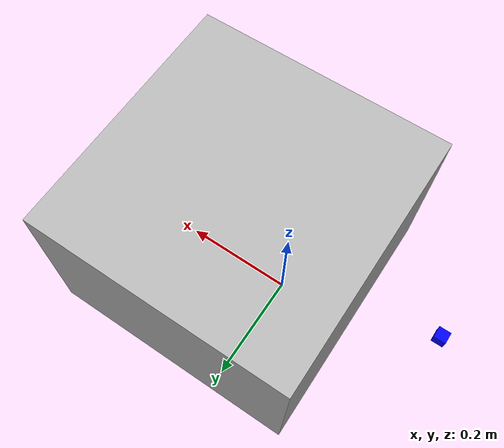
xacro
<?xml version="1.0"?>
<robot xmlns:xacro="http://www.ros.org/wiki/xacro" name="ylhb_robot">

  <!-- 1. 定义主要参考坐标系 (通常位于机器人底盘中心在地面的投影位置) -->
  <link name="base_footprint"/>

  <!-- 2. 小车主体框架：建立 base_link（实测长方体包络） -->
  <link name="base_link">
    <visual>
      <origin xyz="0.0885 0 0.07175" rpy="0 0 0"/>
      <geometry>
        <box size="0.465 0.470 0.3165"/>
      </geometry>
      <material name="gray">
        <color rgba="0.7 0.7 0.7 1"/>
      </material>
    </visual>
    <collision>
      <origin xyz="0.0885 0 0.07175" rpy="0 0 0"/>
      <geometry>
        <box size="0.465 0.470 0.3165"/>
      </geometry>
    </collision>
  </link>

  <!-- 将 base_link 与 base_footprint 链接，保持底盘坐标系在轮间中心。 -->
  <joint name="footprint_to_base_joint" type="fixed">
    <parent link="base_footprint"/>
    <child link="base_link"/>
    <origin xyz="0 0 0.0865" rpy="0 0 0"/>
  </joint>

  <!-- 3. 定义 IMU 的位置与物理属性 -->
  <link name="imu_link">
    <!-- 仅做在RVIZ中可视化时的示意（简单方块） -->
    <visual>
      <geometry>
        <box size="0.02 0.02 0.02"/>
      </geometry>
      <material name="blue">
        <color rgba="0 0 1 1"/>
      </material>
    </visual>
  </link>

  <!-- 4. 定义 激光雷达 的位置与物理属性 -->
  <link name="laser_link">
    <!-- RVIZ可视化的简单圆柱体示意 -->
    <visual>
      <geometry>
        <cylinder radius="0.035" length="0.03"/>
      </geometry>
      <material name="black">
        <color rgba="0.1 0.1 0.1 1"/>
      </material>
    </visual>
  </link>

  <!-- ================= 连接关节 (Joints) ================= -->

  <!-- Base 到 IMU 的静态固定连接 -->
  <joint name="base_to_imu_joint" type="fixed">
    <parent link="base_link"/>
    <child link="imu_link"/>
    <!-- 匹配 ROS 前左上标准坐标系 (X为前，Y为左，Z为上) -->
    <origin xyz="-0.280 0 0.107" rpy="0 0 0"/>
  </joint>

  <joint name="base_to_laser_joint" type="fixed">
    <parent link="base_link"/>
    <child link="laser_link"/>
    <!-- 方向标定：雷达自身输出的数据 Y轴正方向 对准了 小车的车头(正前X轴方向)。
         这意味着雷达自身的 X轴 指向了小车的右侧 (-Y方向)。
         因此，雷达坐标系相对于小车主坐标系顺时针旋转了90度，即 Yaw = -1.5707963 -->
    <origin xyz="-0.090 0 0.1805" rpy="0 0 -1.5707963"/>
  </joint>

</robot>
